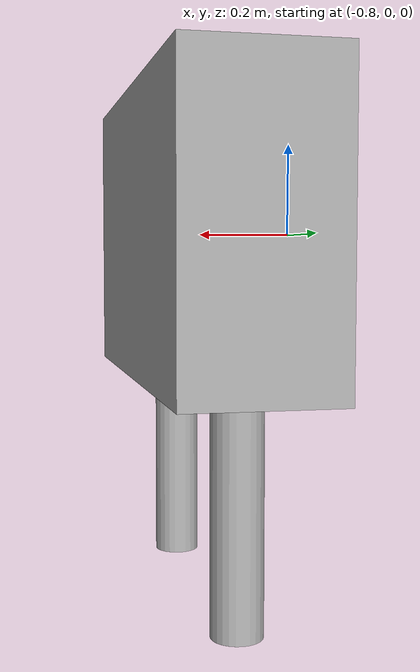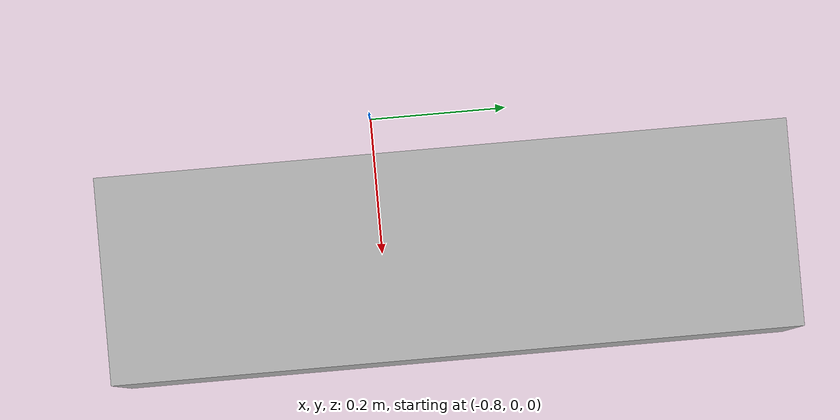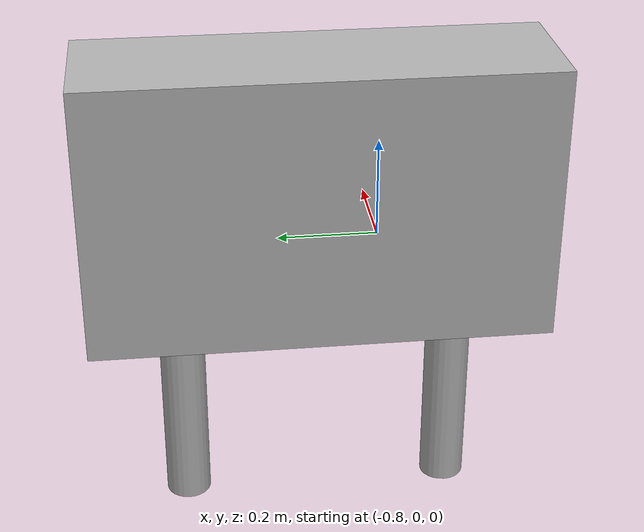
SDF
<?xml version='1.0'?>
<sdf version='1.7'>
  <model name='RoadSign'>
    <link name='link_0'>
      <inertial>
        <mass>1</mass>
        <inertia>
          <ixx>0.145833</ixx>
          <ixy>0</ixy>
          <ixz>0</ixz>
          <iyy>0.145833</iyy>
          <iyz>0</iyz>
          <izz>0.125</izz>
        </inertia>
        <pose>0 0 0 0 -0 0</pose>
      </inertial>
      <pose>-0.585347 0.397771 -0.5 0 -0 0</pose>
      <gravity>1</gravity>
      <self_collide>0</self_collide>
      <kinematic>0</kinematic>
      <enable_wind>0</enable_wind>
      <visual name='visual'>
        <pose>0 0 0 0 -0 0</pose>
        <geometry>
          <cylinder>
            <radius>0.05</radius>
            <length>0.5</length>
          </cylinder>
        </geometry>
        <material>
          <lighting>1</lighting>
            <script>
            <uri>model://RoadSign/materials/scripts</uri>
            <uri>model://RoadSign/materials/textures</uri>
            <name>RoadSign/Diffuse</name>
          </script>
          <shader type='pixel'>
            <normal_map>__default__</normal_map>
          </shader>
          <ambient>0.3 0.3 0.3 1</ambient>
          <diffuse>0.7 0.7 0.7 1</diffuse>
          <specular>0.01 0.01 0.01 1</specular>
          <emissive>0 0 0 1</emissive>
        </material>
        <transparency>0</transparency>
        <cast_shadows>1</cast_shadows>
      </visual>
      <collision name='collision'>
        <laser_retro>0</laser_retro>
        <max_contacts>10</max_contacts>
        <pose>0 0 0 0 -0 0</pose>
        <geometry>
          <cylinder>
            <radius>0.05</radius>
            <length>0.5</length>
          </cylinder>
        </geometry>
        <surface>
          <friction>
            <ode>
              <mu>1</mu>
              <mu2>1</mu2>
              <fdir1>0 0 0</fdir1>
              <slip1>0</slip1>
              <slip2>0</slip2>
            </ode>
            <torsional>
              <coefficient>1</coefficient>
              <patch_radius>0</patch_radius>
              <surface_radius>0</surface_radius>
              <use_patch_radius>1</use_patch_radius>
              <ode>
                <slip>0</slip>
              </ode>
            </torsional>
          </friction>
          <bounce>
            <restitution_coefficient>0</restitution_coefficient>
            <threshold>1e+06</threshold>
          </bounce>
          <contact>
            <collide_without_contact>0</collide_without_contact>
            <collide_without_contact_bitmask>1</collide_without_contact_bitmask>
            <collide_bitmask>1</collide_bitmask>
            <ode>
              <soft_cfm>0</soft_cfm>
              <soft_erp>0.2</soft_erp>
              <kp>1e+13</kp>
              <kd>1</kd>
              <max_vel>0.01</max_vel>
              <min_depth>0</min_depth>
            </ode>
            <bullet>
              <split_impulse>1</split_impulse>
              <split_impulse_penetration_threshold>-0.01</split_impulse_penetration_threshold>
              <soft_cfm>0</soft_cfm>
              <soft_erp>0.2</soft_erp>
              <kp>1e+13</kp>
              <kd>1</kd>
            </bullet>
          </contact>
        </surface>
      </collision>
    </link>
    <link name='link_0_clone'>
      <inertial>
        <mass>1</mass>
        <inertia>
          <ixx>0.145833</ixx>
          <ixy>0</ixy>
          <ixz>0</ixz>
          <iyy>0.145833</iyy>
          <iyz>0</iyz>
          <izz>0.125</izz>
        </inertia>
        <pose>0 0 0 0 -0 0</pose>
      </inertial>
      <pose>-0.585347 -0.202229 -0.5 0 -0 0</pose>
      <gravity>1</gravity>
      <self_collide>0</self_collide>
      <kinematic>0</kinematic>
      <enable_wind>0</enable_wind>
      <visual name='visual'>
        <pose>0 0 0 0 -0 0</pose>
        <geometry>
          <cylinder>
            <radius>0.05</radius>
            <length>0.5</length>
          </cylinder>
        </geometry>
        <material>
          <lighting>1</lighting>
          <script>
            <uri>model://RoadSign/materials/scripts</uri>
            <uri>model://RoadSign/materials/textures</uri>
            <name>RoadSign/Diffuse</name>
          </script>
          <shader type='pixel'>
            <normal_map>__default__</normal_map>
          </shader>
          <ambient>0.3 0.3 0.3 1</ambient>
          <diffuse>0.7 0.7 0.7 1</diffuse>
          <specular>0.01 0.01 0.01 1</specular>
          <emissive>0 0 0 1</emissive>
        </material>
        <transparency>0</transparency>
        <cast_shadows>1</cast_shadows>
      </visual>
      <collision name='collision'>
        <laser_retro>0</laser_retro>
        <max_contacts>10</max_contacts>
        <pose>0 0 0 0 -0 0</pose>
        <geometry>
          <cylinder>
            <radius>0.05</radius>
            <length>0.5</length>
          </cylinder>
        </geometry>
        <surface>
          <friction>
            <ode>
              <mu>1</mu>
              <mu2>1</mu2>
              <fdir1>0 0 0</fdir1>
              <slip1>0</slip1>
              <slip2>0</slip2>
            </ode>
            <torsional>
              <coefficient>1</coefficient>
              <patch_radius>0</patch_radius>
              <surface_radius>0</surface_radius>
              <use_patch_radius>1</use_patch_radius>
              <ode>
                <slip>0</slip>
              </ode>
            </torsional>
          </friction>
          <bounce>
            <restitution_coefficient>0</restitution_coefficient>
            <threshold>1e+06</threshold>
          </bounce>
          <contact>
            <collide_without_contact>0</collide_without_contact>
            <collide_without_contact_bitmask>1</collide_without_contact_bitmask>
            <collide_bitmask>1</collide_bitmask>
            <ode>
              <soft_cfm>0</soft_cfm>
              <soft_erp>0.2</soft_erp>
              <kp>1e+13</kp>
              <kd>1</kd>
              <max_vel>0.01</max_vel>
              <min_depth>0</min_depth>
            </ode>
            <bullet>
              <split_impulse>1</split_impulse>
              <split_impulse_penetration_threshold>-0.01</split_impulse_penetration_threshold>
              <soft_cfm>0</soft_cfm>
              <soft_erp>0.2</soft_erp>
              <kp>1e+13</kp>
              <kd>1</kd>
            </bullet>
          </contact>
        </surface>
      </collision>
    </link>
    <link name='link_1'>
      <inertial>
        <mass>1</mass>
        <inertia>
          <ixx>0.166667</ixx>
          <ixy>0</ixy>
          <ixz>0</ixz>
          <iyy>0.166667</iyy>
          <iyz>0</iyz>
          <izz>0.166667</izz>
        </inertia>
        <pose>0 0 0 0 -0 0</pose>
      </inertial>
      <pose>-0.585347 0.097771 0 0 -0 0</pose>
      <gravity>1</gravity>
      <self_collide>0</self_collide>
      <kinematic>0</kinematic>
      <enable_wind>0</enable_wind>
      <visual name='visual'>
        <pose>0 0 0 0 -0 0</pose>
        <geometry>
          <box>
            <size>0.3 1 0.6</size>
          </box>
        </geometry>
        <material>
          <lighting>1</lighting>
         <script>
            <uri>model://RoadSign/materials/scripts</uri>
            <uri>model://RoadSign/materials/textures</uri>
            <name>RoadSign/Diffuse</name>
          </script>
          <shader type='pixel'>
            <normal_map>__default__</normal_map>
          </shader>
          <ambient>0.3 0.3 0.3 1</ambient>
          <diffuse>0.7 0.7 0.7 1</diffuse>
          <specular>0.01 0.01 0.01 1</specular>
          <emissive>0 0 0 1</emissive>
        </material>
        <transparency>0</transparency>
        <cast_shadows>1</cast_shadows>
      </visual>
      <collision name='collision'>
        <laser_retro>0</laser_retro>
        <max_contacts>10</max_contacts>
        <pose>0 0 0 0 -0 0</pose>
        <geometry>
          <box>
            <size>0.3 1 0.6</size>
          </box>
        </geometry>
        <surface>
          <friction>
            <ode>
              <mu>1</mu>
              <mu2>1</mu2>
              <fdir1>0 0 0</fdir1>
              <slip1>0</slip1>
              <slip2>0</slip2>
            </ode>
            <torsional>
              <coefficient>1</coefficient>
              <patch_radius>0</patch_radius>
              <surface_radius>0</surface_radius>
              <use_patch_radius>1</use_patch_radius>
              <ode>
                <slip>0</slip>
              </ode>
            </torsional>
          </friction>
          <bounce>
            <restitution_coefficient>0</restitution_coefficient>
            <threshold>1e+06</threshold>
          </bounce>
          <contact>
            <collide_without_contact>0</collide_without_contact>
            <collide_without_contact_bitmask>1</collide_without_contact_bitmask>
            <collide_bitmask>1</collide_bitmask>
            <ode>
              <soft_cfm>0</soft_cfm>
              <soft_erp>0.2</soft_erp>
              <kp>1e+13</kp>
              <kd>1</kd>
              <max_vel>0.01</max_vel>
              <min_depth>0</min_depth>
            </ode>
            <bullet>
              <split_impulse>1</split_impulse>
              <split_impulse_penetration_threshold>-0.01</split_impulse_penetration_threshold>
              <soft_cfm>0</soft_cfm>
              <soft_erp>0.2</soft_erp>
              <kp>1e+13</kp>
              <kd>1</kd>
            </bullet>
          </contact>
        </surface>
      </collision>
    </link>
    <joint name='link_1_JOINT_0' type='fixed'>
      <parent>link_1</parent>
      <child>link_0</child>
      <pose>0 0 0 0 -0 0</pose>
      <physics>
        <ode>
          <limit>
            <cfm>0</cfm>
            <erp>0.2</erp>
          </limit>
          <suspension>
            <cfm>0</cfm>
            <erp>0.2</erp>
          </suspension>
        </ode>
      </physics>
    </joint>
    <joint name='link_1_JOINT_1' type='fixed'>
      <parent>link_1</parent>
      <child>link_0_clone</child>
      <pose>0 0 0 0 -0 0</pose>
      <physics>
        <ode>
          <limit>
            <cfm>0</cfm>
            <erp>0.2</erp>
          </limit>
          <suspension>
            <cfm>0</cfm>
            <erp>0.2</erp>
          </suspension>
        </ode>
      </physics>
    </joint>
    <static>0</static>
    <allow_auto_disable>1</allow_auto_disable>
  </model>
</sdf>
